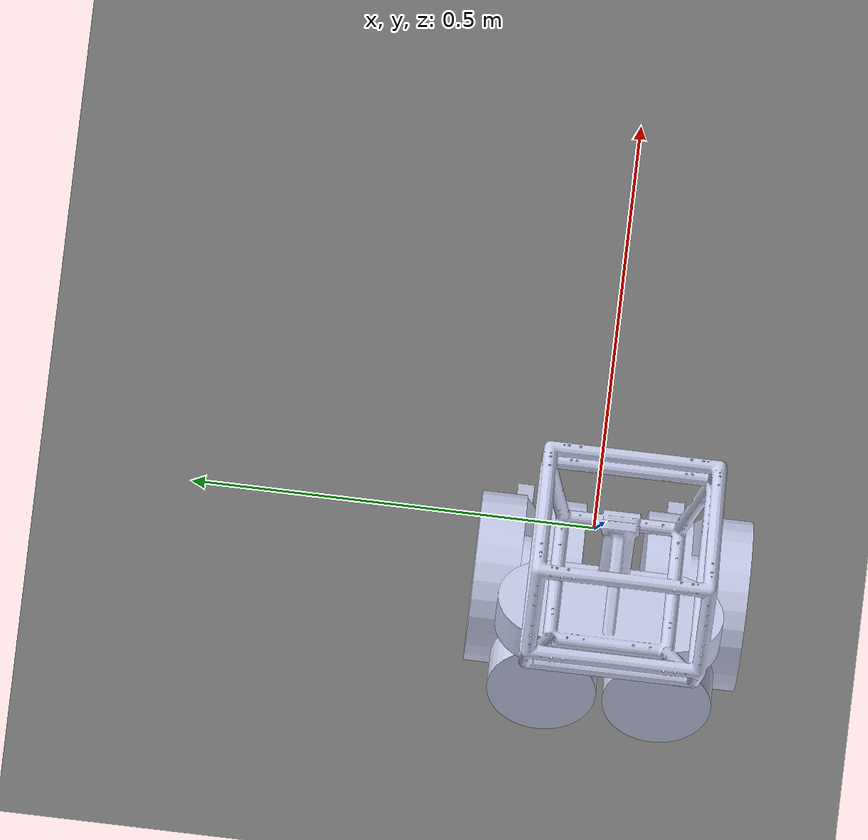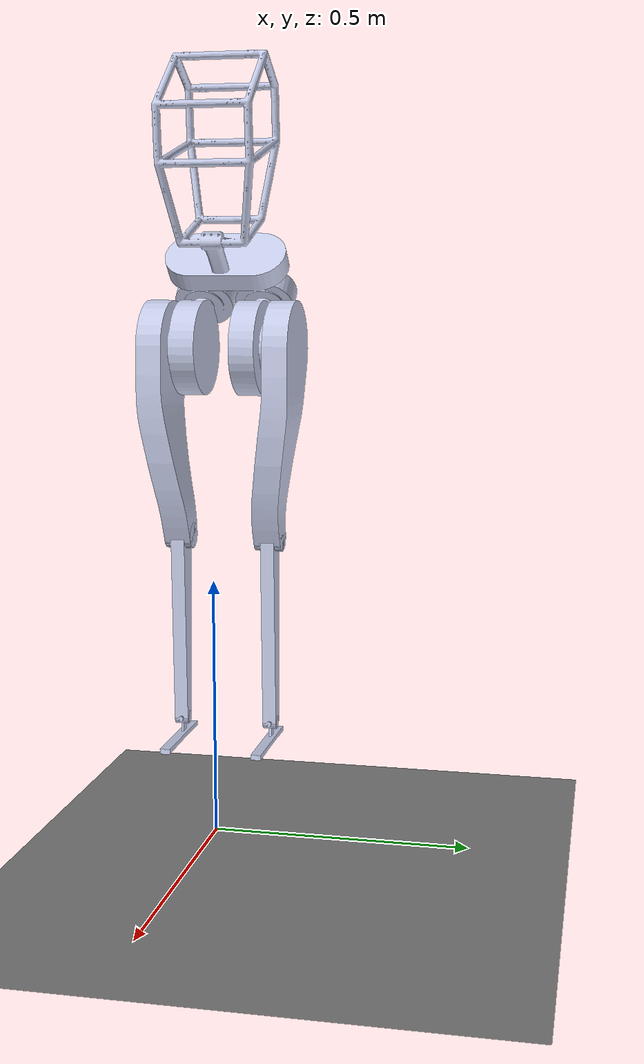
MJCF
<mujoco model="TH01">
    <compiler angle="radian" meshdir="../../urdf/themis/TH01/meshes/"/>
    <statistic meansize="0.182711" extent="1.50747" center="-0.0708167 7.3416e-06 -0.481466"/>
    <asset>
        <mesh name="BASE_LINK" file="BASE_LINK.STL"/>
        <mesh name="HIP_R" file="HIP_R.STL"/>
        <mesh name="HIP_ABAD_R" file="HIP_ABAD_R.STL"/>
        <mesh name="FEMUR_R" file="FEMUR_R.STL"/>
        <mesh name="TIBIA_R" file="TIBIA_R.STL"/>
        <mesh name="ANKLE_R" file="ANKLE_R.STL"/>
        <mesh name="FOOT_R" file="FOOT_R.STL"/>
        <mesh name="HIP_L" file="HIP_L.STL"/>
        <mesh name="HIP_ABAD_L" file="HIP_ABAD_L.STL"/>
        <mesh name="FEMUR_L" file="FEMUR_L.STL"/>
        <mesh name="TIBIA_L" file="TIBIA_L.STL"/>
        <mesh name="ANKLE_L" file="ANKLE_L.STL"/>
        <mesh name="FOOT_L" file="FOOT_L.STL"/>
    </asset>
    <worldbody>
        <light directional="true" pos="-0.5 0.5 3" dir="0 0 -1"/>
        <geom name="floor" type="plane" conaffinity="1" size="100 100 .2"/>
        <body name="pelvis" pos="0 0 1.3">
            <geom type="mesh" contype="0" conaffinity="0" group="1" density="0" rgba="0.79216 0.81961 0.93333 1"
                  mesh="BASE_LINK"/>
            <geom type="mesh" rgba="0.79216 0.81961 0.93333 1" mesh="BASE_LINK"/>
            <body name="HIP_R" pos="-0.18338 -0.0625 -0.25077" quat="0.923879 0 0.382684 0">
                <inertial pos="0.00398 -6e-05 0.00636" mass="0.83264" diaginertia="0.0019 0.00124 0.00094"/>
                <joint name="HIP_YAW_R" pos="0 0 0" axis="0 0 1"/>
                <geom type="mesh" contype="0" conaffinity="0" group="1" density="0" rgba="0.79216 0.81961 0.93333 1"
                      mesh="HIP_R"/>
                <geom type="mesh" rgba="0.79216 0.81961 0.93333 1" mesh="HIP_R"/>
                <body name="HIP_ABAD_R" pos="0.141 0 0" quat="0.499998 0.5 -0.500002 -0.5">
                    <inertial pos="-0.002 0.00147 0.00404" quat="0.999999 0 0.00138503 0" mass="2.78794"
                              diaginertia="0.0144201 0.00791 0.00719994"/>
                    <joint name="HIP_ROLL_R" pos="0 0 0" axis="0 0 1"/>
                    <geom type="mesh" contype="0" conaffinity="0" group="1" density="0" rgba="0.79216 0.81961 0.93333 1"
                          mesh="HIP_ABAD_R"/>
                    <geom type="mesh" rgba="0.79216 0.81961 0.93333 1" mesh="HIP_ABAD_R"/>
                    <body name="FEMUR_R" pos="0.029 0 0" quat="0.653281 -0.270597 0.653283 -0.270597">
                        <inertial pos="0.06111 0.00174 0.02002" quat="0.0196859 0.712454 0.000931174 0.701442"
                                  mass="3.75384" diaginertia="0.0759597 0.0702972 0.0116631"/>
                        <joint name="HIP_PITCH_R" pos="0 0 0" axis="0 0 1"/>
                        <geom type="mesh" contype="0" conaffinity="0" group="1" density="0"
                              rgba="0.79216 0.81961 0.93333 1"
                              mesh="FEMUR_R"/>
                        <geom type="mesh" rgba="0.79216 0.81961 0.93333 1" mesh="FEMUR_R"/>
                        <body name="TIBIA_R" pos="0.375 0 0">
                            <inertial pos="0.09678 0.00694 -6e-05" quat="0.508837 0.506479 0.493209 0.491232"
                                      mass="1.27716"
                                      diaginertia="0.0232513 0.02318 0.000888685"/>
                            <joint name="KNEE_PITCH_R" pos="0 0 0" axis="0 0 1"/>
                            <geom type="mesh" contype="0" conaffinity="0" group="1" density="0"
                                  rgba="0.79216 0.81961 0.93333 1" mesh="TIBIA_R"/>
                            <body name="ANKLE_R" pos="0.375 0 0">
                                <inertial pos="0 0 0" mass="0.00694571" diaginertia="7.6e-07 7.6e-07 4e-08"/>
                                <joint name="ANKLE_PITCH_R" pos="0 0 0" axis="0 0 1"/>
                                <geom type="mesh" contype="0" conaffinity="0" group="1" density="0"
                                      rgba="0.79216 0.81961 0.93333 1" mesh="ANKLE_R"/>
                                <geom type="mesh" rgba="0.79216 0.81961 0.93333 1" mesh="ANKLE_R"/>
                                <body name="FOOT_R" pos="0 0 0" quat="0.707105 -0.707108 0 0">
                                    <inertial pos="0.01948 -3e-05 0.03906" quat="0.991335 0 -0.131355 0" mass="0.17981"
                                              diaginertia="0.000723159 0.00072 8.68412e-05"/>
                                    <joint name="ANKLE_ROLL_R" pos="0 0 0" axis="0 0 1"/>
                                    <geom type="mesh" contype="0" conaffinity="0" group="1" density="0"
                                          rgba="0.79216 0.81961 0.93333 1" mesh="FOOT_R"/>
                                    <geom type="mesh" rgba="0.79216 0.81961 0.93333 1" mesh="FOOT_R"/>
                                </body>
                            </body>
                        </body>
                    </body>
                </body>
            </body>
            <body name="HIP_L" pos="-0.183378 0.0625 -0.250768" quat="0.923879 0 0.382684 0">
                <inertial pos="0.00398 -6e-05 0.00636" mass="0.83264" diaginertia="0.0019 0.00124 0.00094"/>
                <joint name="HIP_YAW_L" pos="0 0 0" axis="0 0 1"/>
                <geom type="mesh" contype="0" conaffinity="0" group="1" density="0" rgba="0.79216 0.81961 0.93333 1"
                      mesh="HIP_L"/>
                <geom type="mesh" rgba="0.79216 0.81961 0.93333 1" mesh="HIP_L"/>
                <body name="HIP_ABAD_L" pos="0.141 0 0" quat="0.499998 0.5 -0.500002 -0.5">
                    <inertial pos="0.00198 0.00146 0.00395" quat="0.999999 0 -0.00138503 0" mass="2.818"
                              diaginertia="0.0144201 0.00791 0.00719994"/>
                    <joint name="HIP_ROLL_L" pos="0 0 0" axis="0 0 1"/>
                    <geom type="mesh" contype="0" conaffinity="0" group="1" density="0" rgba="0.79216 0.81961 0.93333 1"
                          mesh="HIP_ABAD_L"/>
                    <geom type="mesh" rgba="0.79216 0.81961 0.93333 1" mesh="HIP_ABAD_L"/>
                    <body name="FEMUR_L" pos="-0.029 0 0" quat="0.653281 -0.270597 0.653283 -0.270597">
                        <inertial pos="0.06112 0.00177 -0.02002" quat="-0.000932506 0.701443 -0.0196841 0.712453"
                                  mass="3.75393" diaginertia="0.0759697 0.0703072 0.0116631"/>
                        <joint name="HIP_PITCH_L" pos="0 0 0" axis="0 0 1"/>
                        <geom type="mesh" contype="0" conaffinity="0" group="1" density="0"
                              rgba="0.79216 0.81961 0.93333 1"
                              mesh="FEMUR_L"/>
                        <geom type="mesh" rgba="0.79216 0.81961 0.93333 1" mesh="FEMUR_L"/>
                        <body name="TIBIA_L" pos="0.375 0 0">
                            <inertial pos="0.09678 0.00694 -6e-05" quat="0.508837 0.506479 0.493209 0.491232"
                                      mass="1.27716"
                                      diaginertia="0.0232513 0.02318 0.000888685"/>
                            <joint name="KNEE_PITCH_L" pos="0 0 0" axis="0 0 1"/>
                            <geom type="mesh" contype="0" conaffinity="0" group="1" density="0"
                                  rgba="0.79216 0.81961 0.93333 1" mesh="TIBIA_L"/>
                            <body name="ANKLE_L" pos="0.375 0 0">
                                <inertial pos="0 0 0" quat="0.820473 0.339851 -0.17592 0.424708" mass="0.00694571"
                                          diaginertia="1e-07 1e-07 1e-07"/>
                                <joint name="ANKLE_PITCH_L" pos="0 0 0" axis="0 0 1"/>
                                <geom type="mesh" contype="0" conaffinity="0" group="1" density="0"
                                      rgba="0.79216 0.81961 0.93333 1" mesh="ANKLE_L"/>
                                <geom type="mesh" rgba="0.79216 0.81961 0.93333 1" mesh="ANKLE_L"/>
                                <body name="FOOT_L" pos="0 0 0" quat="0.707105 -0.707108 0 0">
                                    <inertial pos="0.01948 -3e-05 0.03906" quat="0.991335 0 -0.131355 0" mass="0.17981"
                                              diaginertia="0.000723159 0.00072 8.68412e-05"/>
                                    <joint name="ANKLE_ROLL_L" pos="0 0 0" axis="0 0 1"/>
                                    <geom type="mesh" contype="0" conaffinity="0" group="1" density="0"
                                          rgba="0.79216 0.81961 0.93333 1" mesh="FOOT_L"/>
                                    <geom type="mesh" rgba="0.79216 0.81961 0.93333 1" mesh="FOOT_L"/>
                                </body>
                            </body>
                        </body>
                    </body>
                </body>
            </body>
        </body>
    </worldbody>
</mujoco>
